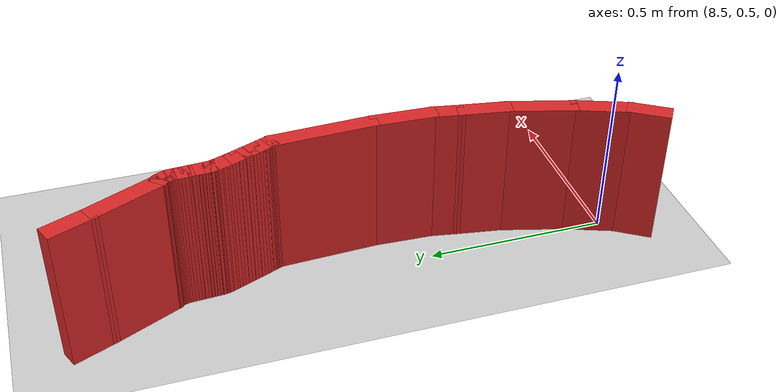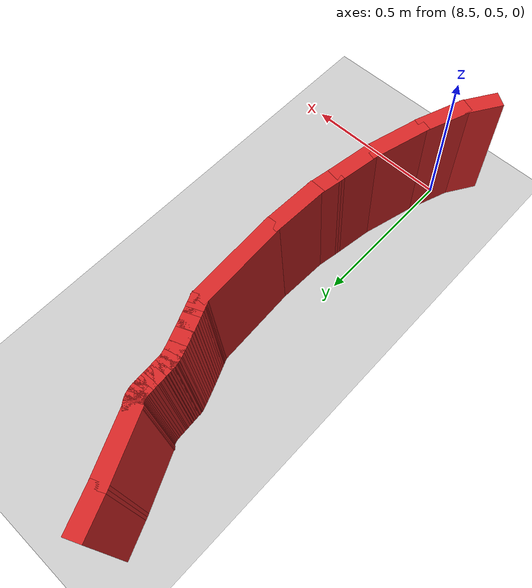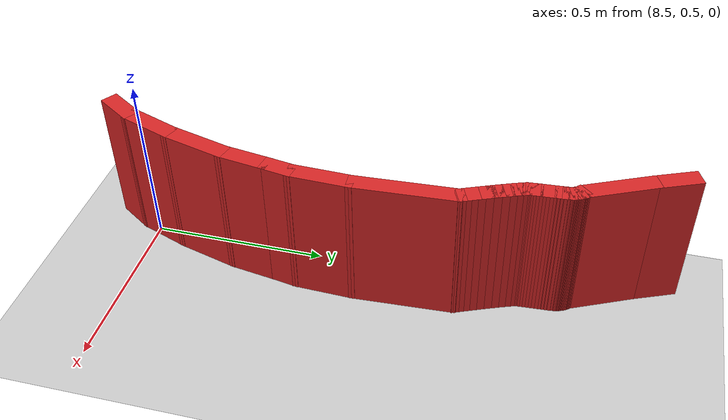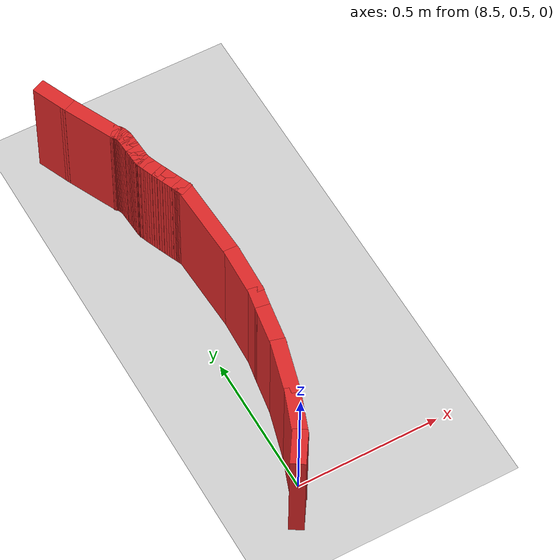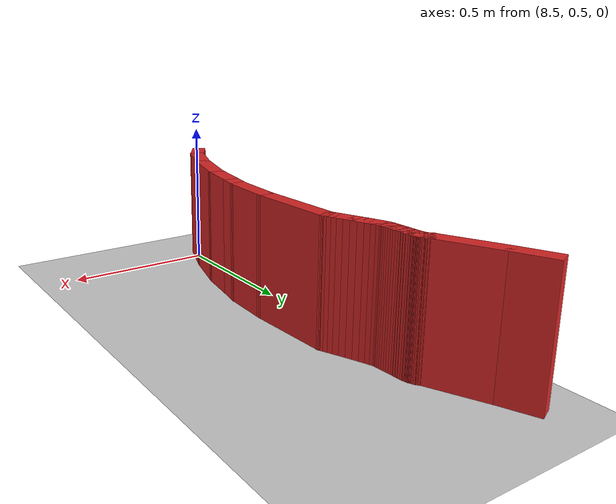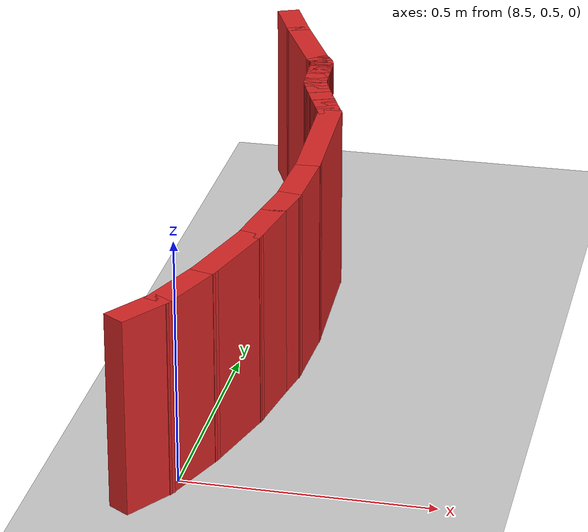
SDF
<sdf version="1.8">
 <world name="warehouse">
  <model name="ground_plane">
   <static>1</static>
   <link name="link">
    <collision name="collision">
     <geometry><plane><normal>0 0 1</normal><size>100 100</size></plane></geometry>
    </collision>
    <visual name="visual">
     <geometry><plane><normal>0 0 1</normal><size>100 100</size></plane></geometry>
     <material>
      <ambient>0.8 0.8 0.8 1</ambient>
      <diffuse>0.8 0.8 0.8 1</diffuse>
      <specular>0.8 0.8 0.8 1</specular>
     </material>
     <plugin name="__default__" filename="__default__"/>
    </visual>
   </link>
   <plugin name="__default__" filename="__default__"/>
  </model>
  <model name="outer_wall">
   <static>true</static>
   <link name="ow_9">
    <pose>8.410924 1.937092 0.2000 0 0 -1.167752</pose>
    <collision name="ow_9_collision"><geometry><box><size>0.131746 0.05 0.4</size></box></geometry></collision>
    <visual name="ow_9_visual">
     <geometry><box><size>0.131746 0.05 0.4</size></box></geometry>
     <material>
      <ambient>0.85 0.15 0.15 1</ambient>
      <diffuse>0.85 0.15 0.15 1</diffuse>
      <specular>0.1 0.1 0.1 1</specular>
     </material>
    </visual>
   </link>
   <link name="ow_10">
    <pose>8.473475 1.799167 0.2000 0 0 -1.131743</pose>
    <collision name="ow_10_collision"><geometry><box><size>0.211190 0.05 0.4</size></box></geometry></collision>
    <visual name="ow_10_visual">
     <geometry><box><size>0.211190 0.05 0.4</size></box></geometry>
     <material>
      <ambient>0.85 0.15 0.15 1</ambient>
      <diffuse>0.85 0.15 0.15 1</diffuse>
      <specular>0.1 0.1 0.1 1</specular>
     </material>
    </visual>
   </link>
   <link name="ow_11">
    <pose>8.514258 1.712508 0.2000 0 0 -0.726146</pose>
    <collision name="ow_11_collision"><geometry><box><size>0.020393 0.05 0.4</size></box></geometry></collision>
    <visual name="ow_11_visual">
     <geometry><box><size>0.020393 0.05 0.4</size></box></geometry>
     <material>
      <ambient>0.85 0.15 0.15 1</ambient>
      <diffuse>0.85 0.15 0.15 1</diffuse>
      <specular>0.1 0.1 0.1 1</specular>
     </material>
    </visual>
   </link>
   <link name="ow_12">
    <pose>8.514814 1.711983 0.2000 0 0 -0.766705</pose>
    <collision name="ow_12_collision"><geometry><box><size>0.021137 0.05 0.4</size></box></geometry></collision>
    <visual name="ow_12_visual">
     <geometry><box><size>0.021137 0.05 0.4</size></box></geometry>
     <material>
      <ambient>0.85 0.15 0.15 1</ambient>
      <diffuse>0.85 0.15 0.15 1</diffuse>
      <specular>0.1 0.1 0.1 1</specular>
     </material>
    </visual>
   </link>
   <link name="ow_13">
    <pose>8.515847 1.710927 0.2000 0 0 -0.814986</pose>
    <collision name="ow_13_collision"><geometry><box><size>0.021818 0.05 0.4</size></box></geometry></collision>
    <visual name="ow_13_visual">
     <geometry><box><size>0.021818 0.05 0.4</size></box></geometry>
     <material>
      <ambient>0.85 0.15 0.15 1</ambient>
      <diffuse>0.85 0.15 0.15 1</diffuse>
      <specular>0.1 0.1 0.1 1</specular>
     </material>
    </visual>
   </link>
   <link name="ow_14">
    <pose>8.517260 1.709333 0.2000 0 0 -0.868072</pose>
    <collision name="ow_14_collision"><geometry><box><size>0.022444 0.05 0.4</size></box></geometry></collision>
    <visual name="ow_14_visual">
     <geometry><box><size>0.022444 0.05 0.4</size></box></geometry>
     <material>
      <ambient>0.85 0.15 0.15 1</ambient>
      <diffuse>0.85 0.15 0.15 1</diffuse>
      <specular>0.1 0.1 0.1 1</specular>
     </material>
    </visual>
   </link>
   <link name="ow_15">
    <pose>8.518958 1.707194 0.2000 0 0 -0.925843</pose>
    <collision name="ow_15_collision"><geometry><box><size>0.023020 0.05 0.4</size></box></geometry></collision>
    <visual name="ow_15_visual">
     <geometry><box><size>0.023020 0.05 0.4</size></box></geometry>
     <material>
      <ambient>0.85 0.15 0.15 1</ambient>
      <diffuse>0.85 0.15 0.15 1</diffuse>
      <specular>0.1 0.1 0.1 1</specular>
     </material>
    </visual>
   </link>
   <link name="ow_16">
    <pose>8.520844 1.704502 0.2000 0 0 -0.988357</pose>
    <collision name="ow_16_collision"><geometry><box><size>0.023556 0.05 0.4</size></box></geometry></collision>
    <visual name="ow_16_visual">
     <geometry><box><size>0.023556 0.05 0.4</size></box></geometry>
     <material>
      <ambient>0.85 0.15 0.15 1</ambient>
      <diffuse>0.85 0.15 0.15 1</diffuse>
      <specular>0.1 0.1 0.1 1</specular>
     </material>
    </visual>
   </link>
   <link name="ow_17">
    <pose>8.522822 1.701251 0.2000 0 0 -1.055611</pose>
    <collision name="ow_17_collision"><geometry><box><size>0.024060 0.05 0.4</size></box></geometry></collision>
    <visual name="ow_17_visual">
     <geometry><box><size>0.024060 0.05 0.4</size></box></geometry>
     <material>
      <ambient>0.85 0.15 0.15 1</ambient>
      <diffuse>0.85 0.15 0.15 1</diffuse>
      <specular>0.1 0.1 0.1 1</specular>
     </material>
    </visual>
   </link>
   <link name="ow_18">
    <pose>8.524796 1.697433 0.2000 0 0 -1.127456</pose>
    <collision name="ow_18_collision"><geometry><box><size>0.024543 0.05 0.4</size></box></geometry></collision>
    <visual name="ow_18_visual">
     <geometry><box><size>0.024543 0.05 0.4</size></box></geometry>
     <material>
      <ambient>0.85 0.15 0.15 1</ambient>
      <diffuse>0.85 0.15 0.15 1</diffuse>
      <specular>0.1 0.1 0.1 1</specular>
     </material>
    </visual>
   </link>
   <link name="ow_19">
    <pose>8.526671 1.693040 0.2000 0 0 -1.203547</pose>
    <collision name="ow_19_collision"><geometry><box><size>0.025016 0.05 0.4</size></box></geometry></collision>
    <visual name="ow_19_visual">
     <geometry><box><size>0.025016 0.05 0.4</size></box></geometry>
     <material>
      <ambient>0.85 0.15 0.15 1</ambient>
      <diffuse>0.85 0.15 0.15 1</diffuse>
      <specular>0.1 0.1 0.1 1</specular>
     </material>
    </visual>
   </link>
   <link name="ow_20">
    <pose>8.528350 1.688067 0.2000 0 0 -1.283308</pose>
    <collision name="ow_20_collision"><geometry><box><size>0.025491 0.05 0.4</size></box></geometry></collision>
    <visual name="ow_20_visual">
     <geometry><box><size>0.025491 0.05 0.4</size></box></geometry>
     <material>
      <ambient>0.85 0.15 0.15 1</ambient>
      <diffuse>0.85 0.15 0.15 1</diffuse>
      <specular>0.1 0.1 0.1 1</specular>
     </material>
    </visual>
   </link>
   <link name="ow_21">
    <pose>8.529737 1.682505 0.2000 0 0 -1.365927</pose>
    <collision name="ow_21_collision"><geometry><box><size>0.025983 0.05 0.4</size></box></geometry></collision>
    <visual name="ow_21_visual">
     <geometry><box><size>0.025983 0.05 0.4</size></box></geometry>
     <material>
      <ambient>0.85 0.15 0.15 1</ambient>
      <diffuse>0.85 0.15 0.15 1</diffuse>
      <specular>0.1 0.1 0.1 1</specular>
     </material>
    </visual>
   </link>
   <link name="ow_22">
    <pose>8.530736 1.676348 0.2000 0 0 -1.450381</pose>
    <collision name="ow_22_collision"><geometry><box><size>0.026504 0.05 0.4</size></box></geometry></collision>
    <visual name="ow_22_visual">
     <geometry><box><size>0.026504 0.05 0.4</size></box></geometry>
     <material>
      <ambient>0.85 0.15 0.15 1</ambient>
      <diffuse>0.85 0.15 0.15 1</diffuse>
      <specular>0.1 0.1 0.1 1</specular>
     </material>
    </visual>
   </link>
   <link name="ow_23">
    <pose>8.531392 1.669507 0.2000 0 0 -1.497422</pose>
    <collision name="ow_23_collision"><geometry><box><size>0.027244 0.05 0.4</size></box></geometry></collision>
    <visual name="ow_23_visual">
     <geometry><box><size>0.027244 0.05 0.4</size></box></geometry>
     <material>
      <ambient>0.85 0.15 0.15 1</ambient>
      <diffuse>0.85 0.15 0.15 1</diffuse>
      <specular>0.1 0.1 0.1 1</specular>
     </material>
    </visual>
   </link>
   <link name="ow_24">
    <pose>8.531924 1.661882 0.2000 0 0 -1.504713</pose>
    <collision name="ow_24_collision"><geometry><box><size>0.028042 0.05 0.4</size></box></geometry></collision>
    <visual name="ow_24_visual">
     <geometry><box><size>0.028042 0.05 0.4</size></box></geometry>
     <material>
      <ambient>0.85 0.15 0.15 1</ambient>
      <diffuse>0.85 0.15 0.15 1</diffuse>
      <specular>0.1 0.1 0.1 1</specular>
     </material>
    </visual>
   </link>
   <link name="ow_25">
    <pose>8.532455 1.653556 0.2000 0 0 -1.509314</pose>
    <collision name="ow_25_collision"><geometry><box><size>0.028644 0.05 0.4</size></box></geometry></collision>
    <visual name="ow_25_visual">
     <geometry><box><size>0.028644 0.05 0.4</size></box></geometry>
     <material>
      <ambient>0.85 0.15 0.15 1</ambient>
      <diffuse>0.85 0.15 0.15 1</diffuse>
      <specular>0.1 0.1 0.1 1</specular>
     </material>
    </visual>
   </link>
   <link name="ow_26">
    <pose>8.532986 1.644726 0.2000 0 0 -1.512062</pose>
    <collision name="ow_26_collision"><geometry><box><size>0.029048 0.05 0.4</size></box></geometry></collision>
    <visual name="ow_26_visual">
     <geometry><box><size>0.029048 0.05 0.4</size></box></geometry>
     <material>
      <ambient>0.85 0.15 0.15 1</ambient>
      <diffuse>0.85 0.15 0.15 1</diffuse>
      <specular>0.1 0.1 0.1 1</specular>
     </material>
    </visual>
   </link>
   <link name="ow_27">
    <pose>8.533517 1.635590 0.2000 0 0 -1.513374</pose>
    <collision name="ow_27_collision"><geometry><box><size>0.029255 0.05 0.4</size></box></geometry></collision>
    <visual name="ow_27_visual">
     <geometry><box><size>0.029255 0.05 0.4</size></box></geometry>
     <material>
      <ambient>0.85 0.15 0.15 1</ambient>
      <diffuse>0.85 0.15 0.15 1</diffuse>
      <specular>0.1 0.1 0.1 1</specular>
     </material>
    </visual>
   </link>
   <link name="ow_28">
    <pose>8.534048 1.626346 0.2000 0 0 -1.513431</pose>
    <collision name="ow_28_collision"><geometry><box><size>0.029264 0.05 0.4</size></box></geometry></collision>
    <visual name="ow_28_visual">
     <geometry><box><size>0.029264 0.05 0.4</size></box></geometry>
     <material>
      <ambient>0.85 0.15 0.15 1</ambient>
      <diffuse>0.85 0.15 0.15 1</diffuse>
      <specular>0.1 0.1 0.1 1</specular>
     </material>
    </visual>
   </link>
   <link name="ow_29">
    <pose>8.534579 1.617190 0.2000 0 0 -1.512241</pose>
    <collision name="ow_29_collision"><geometry><box><size>0.029077 0.05 0.4</size></box></geometry></collision>
    <visual name="ow_29_visual">
     <geometry><box><size>0.029077 0.05 0.4</size></box></geometry>
     <material>
      <ambient>0.85 0.15 0.15 1</ambient>
      <diffuse>0.85 0.15 0.15 1</diffuse>
      <specular>0.1 0.1 0.1 1</specular>
     </material>
    </visual>
   </link>
   <link name="ow_30">
    <pose>8.535110 1.608322 0.2000 0 0 -1.509641</pose>
    <collision name="ow_30_collision"><geometry><box><size>0.028692 0.05 0.4</size></box></geometry></collision>
    <visual name="ow_30_visual">
     <geometry><box><size>0.028692 0.05 0.4</size></box></geometry>
     <material>
      <ambient>0.85 0.15 0.15 1</ambient>
      <diffuse>0.85 0.15 0.15 1</diffuse>
      <specular>0.1 0.1 0.1 1</specular>
     </material>
    </visual>
   </link>
   <link name="ow_31">
    <pose>8.535642 1.599937 0.2000 0 0 -1.505243</pose>
    <collision name="ow_31_collision"><geometry><box><size>0.028111 0.05 0.4</size></box></geometry></collision>
    <visual name="ow_31_visual">
     <geometry><box><size>0.028111 0.05 0.4</size></box></geometry>
     <material>
      <ambient>0.85 0.15 0.15 1</ambient>
      <diffuse>0.85 0.15 0.15 1</diffuse>
      <specular>0.1 0.1 0.1 1</specular>
     </material>
    </visual>
   </link>
   <link name="ow_32">
    <pose>8.536173 1.592234 0.2000 0 0 -1.498263</pose>
    <collision name="ow_32_collision"><geometry><box><size>0.027332 0.05 0.4</size></box></geometry></collision>
    <visual name="ow_32_visual">
     <geometry><box><size>0.027332 0.05 0.4</size></box></geometry>
     <material>
      <ambient>0.85 0.15 0.15 1</ambient>
      <diffuse>0.85 0.15 0.15 1</diffuse>
      <specular>0.1 0.1 0.1 1</specular>
     </material>
    </visual>
   </link>
   <link name="ow_33">
    <pose>8.536704 1.585410 0.2000 0 0 -1.487103</pose>
    <collision name="ow_33_collision"><geometry><box><size>0.026357 0.05 0.4</size></box></geometry></collision>
    <visual name="ow_33_visual">
     <geometry><box><size>0.026357 0.05 0.4</size></box></geometry>
     <material>
      <ambient>0.85 0.15 0.15 1</ambient>
      <diffuse>0.85 0.15 0.15 1</diffuse>
      <specular>0.1 0.1 0.1 1</specular>
     </material>
    </visual>
   </link>
   <link name="ow_34">
    <pose>8.537236 1.579663 0.2000 0 0 -1.468142</pose>
    <collision name="ow_34_collision"><geometry><box><size>0.025186 0.05 0.4</size></box></geometry></collision>
    <visual name="ow_34_visual">
     <geometry><box><size>0.025186 0.05 0.4</size></box></geometry>
     <material>
      <ambient>0.85 0.15 0.15 1</ambient>
      <diffuse>0.85 0.15 0.15 1</diffuse>
      <specular>0.1 0.1 0.1 1</specular>
     </material>
    </visual>
   </link>
   <link name="ow_35">
    <pose>8.538376 1.573562 0.2000 0 0 -1.327310</pose>
    <collision name="ow_35_collision"><geometry><box><size>0.027257 0.05 0.4</size></box></geometry></collision>
    <visual name="ow_35_visual">
     <geometry><box><size>0.027257 0.05 0.4</size></box></geometry>
     <material>
      <ambient>0.85 0.15 0.15 1</ambient>
      <diffuse>0.85 0.15 0.15 1</diffuse>
      <specular>0.1 0.1 0.1 1</specular>
     </material>
    </visual>
   </link>
   <link name="ow_36">
    <pose>8.541198 1.564303 0.2000 0 0 -1.243636</pose>
    <collision name="ow_36_collision"><geometry><box><size>0.032119 0.05 0.4</size></box></geometry></collision>
    <visual name="ow_36_visual">
     <geometry><box><size>0.032119 0.05 0.4</size></box></geometry>
     <material>
      <ambient>0.85 0.15 0.15 1</ambient>
      <diffuse>0.85 0.15 0.15 1</diffuse>
      <specular>0.1 0.1 0.1 1</specular>
     </material>
    </visual>
   </link>
   <link name="ow_37">
    <pose>8.545947 1.551090 0.2000 0 0 -1.212249</pose>
    <collision name="ow_37_collision"><geometry><box><size>0.035964 0.05 0.4</size></box></geometry></collision>
    <visual name="ow_37_visual">
     <geometry><box><size>0.035964 0.05 0.4</size></box></geometry>
     <material>
      <ambient>0.85 0.15 0.15 1</ambient>
      <diffuse>0.85 0.15 0.15 1</diffuse>
      <specular>0.1 0.1 0.1 1</specular>
     </material>
    </visual>
   </link>
   <link name="ow_38">
    <pose>8.552183 1.534887 0.2000 0 0 -1.195842</pose>
    <collision name="ow_38_collision"><geometry><box><size>0.038762 0.05 0.4</size></box></geometry></collision>
    <visual name="ow_38_visual">
     <geometry><box><size>0.038762 0.05 0.4</size></box></geometry>
     <material>
      <ambient>0.85 0.15 0.15 1</ambient>
      <diffuse>0.85 0.15 0.15 1</diffuse>
      <specular>0.1 0.1 0.1 1</specular>
     </material>
    </visual>
   </link>
   <link name="ow_39">
    <pose>8.559470 1.516654 0.2000 0 0 -1.185762</pose>
    <collision name="ow_39_collision"><geometry><box><size>0.040508 0.05 0.4</size></box></geometry></collision>
    <visual name="ow_39_visual">
     <geometry><box><size>0.040508 0.05 0.4</size></box></geometry>
     <material>
      <ambient>0.85 0.15 0.15 1</ambient>
      <diffuse>0.85 0.15 0.15 1</diffuse>
      <specular>0.1 0.1 0.1 1</specular>
     </material>
    </visual>
   </link>
   <link name="ow_40">
    <pose>8.567370 1.497354 0.2000 0 0 -1.178943</pose>
    <collision name="ow_40_collision"><geometry><box><size>0.041200 0.05 0.4</size></box></geometry></collision>
    <visual name="ow_40_visual">
     <geometry><box><size>0.041200 0.05 0.4</size></box></geometry>
     <material>
      <ambient>0.85 0.15 0.15 1</ambient>
      <diffuse>0.85 0.15 0.15 1</diffuse>
      <specular>0.1 0.1 0.1 1</specular>
     </material>
    </visual>
   </link>
   <link name="ow_41">
    <pose>8.575444 1.477949 0.2000 0 0 -1.174025</pose>
    <collision name="ow_41_collision"><geometry><box><size>0.040836 0.05 0.4</size></box></geometry></collision>
    <visual name="ow_41_visual">
     <geometry><box><size>0.040836 0.05 0.4</size></box></geometry>
     <material>
      <ambient>0.85 0.15 0.15 1</ambient>
      <diffuse>0.85 0.15 0.15 1</diffuse>
      <specular>0.1 0.1 0.1 1</specular>
     </material>
    </visual>
   </link>
   <link name="ow_42">
    <pose>8.583255 1.459400 0.2000 0 0 -1.170311</pose>
    <collision name="ow_42_collision"><geometry><box><size>0.039417 0.05 0.4</size></box></geometry></collision>
    <visual name="ow_42_visual">
     <geometry><box><size>0.039417 0.05 0.4</size></box></geometry>
     <material>
      <ambient>0.85 0.15 0.15 1</ambient>
      <diffuse>0.85 0.15 0.15 1</diffuse>
      <specular>0.1 0.1 0.1 1</specular>
     </material>
    </visual>
   </link>
   <link name="ow_43">
    <pose>8.590365 1.442669 0.2000 0 0 -1.167409</pose>
    <collision name="ow_43_collision"><geometry><box><size>0.036941 0.05 0.4</size></box></geometry></collision>
    <visual name="ow_43_visual">
     <geometry><box><size>0.036941 0.05 0.4</size></box></geometry>
     <material>
      <ambient>0.85 0.15 0.15 1</ambient>
      <diffuse>0.85 0.15 0.15 1</diffuse>
      <specular>0.1 0.1 0.1 1</specular>
     </material>
    </visual>
   </link>
   <link name="ow_44">
    <pose>8.596336 1.428719 0.2000 0 0 -1.165085</pose>
    <collision name="ow_44_collision"><geometry><box><size>0.033409 0.05 0.4</size></box></geometry></collision>
    <visual name="ow_44_visual">
     <geometry><box><size>0.033409 0.05 0.4</size></box></geometry>
     <material>
      <ambient>0.85 0.15 0.15 1</ambient>
      <diffuse>0.85 0.15 0.15 1</diffuse>
      <specular>0.1 0.1 0.1 1</specular>
     </material>
    </visual>
   </link>
   <link name="ow_45">
    <pose>8.600730 1.418510 0.2000 0 0 -1.163196</pose>
    <collision name="ow_45_collision"><geometry><box><size>0.028820 0.05 0.4</size></box></geometry></collision>
    <visual name="ow_45_visual">
     <geometry><box><size>0.028820 0.05 0.4</size></box></geometry>
     <material>
      <ambient>0.85 0.15 0.15 1</ambient>
      <diffuse>0.85 0.15 0.15 1</diffuse>
      <specular>0.1 0.1 0.1 1</specular>
     </material>
    </visual>
   </link>
   <link name="ow_46">
    <pose>8.603109 1.413005 0.2000 0 0 -1.161746</pose>
    <collision name="ow_46_collision"><geometry><box><size>0.023175 0.05 0.4</size></box></geometry></collision>
    <visual name="ow_46_visual">
     <geometry><box><size>0.023175 0.05 0.4</size></box></geometry>
     <material>
      <ambient>0.85 0.15 0.15 1</ambient>
      <diffuse>0.85 0.15 0.15 1</diffuse>
      <specular>0.1 0.1 0.1 1</specular>
     </material>
    </visual>
   </link>
   <link name="ow_47">
    <pose>8.610303 1.272179 0.2000 0 0 -1.523743</pose>
    <collision name="ow_47_collision"><geometry><box><size>0.299048 0.05 0.4</size></box></geometry></collision>
    <visual name="ow_47_visual">
     <geometry><box><size>0.299048 0.05 0.4</size></box></geometry>
     <material>
      <ambient>0.85 0.15 0.15 1</ambient>
      <diffuse>0.85 0.15 0.15 1</diffuse>
      <specular>0.1 0.1 0.1 1</specular>
     </material>
    </visual>
   </link>
   <link name="ow_48">
    <pose>8.613793 1.051434 0.2000 0 0 -1.608541</pose>
    <collision name="ow_48_collision"><geometry><box><size>0.182866 0.05 0.4</size></box></geometry></collision>
    <visual name="ow_48_visual">
     <geometry><box><size>0.182866 0.05 0.4</size></box></geometry>
     <material>
      <ambient>0.85 0.15 0.15 1</ambient>
      <diffuse>0.85 0.15 0.15 1</diffuse>
      <specular>0.1 0.1 0.1 1</specular>
     </material>
    </visual>
   </link>
   <link name="ow_49">
    <pose>8.604440 0.934363 0.2000 0 0 -1.744938</pose>
    <collision name="ow_49_collision"><geometry><box><size>0.092488 0.05 0.4</size></box></geometry></collision>
    <visual name="ow_49_visual">
     <geometry><box><size>0.092488 0.05 0.4</size></box></geometry>
     <material>
      <ambient>0.85 0.15 0.15 1</ambient>
      <diffuse>0.85 0.15 0.15 1</diffuse>
      <specular>0.1 0.1 0.1 1</specular>
     </material>
    </visual>
   </link>
   <link name="ow_50">
    <pose>8.587956 0.835043 0.2000 0 0 -1.729836</pose>
    <collision name="ow_50_collision"><geometry><box><size>0.148873 0.05 0.4</size></box></geometry></collision>
    <visual name="ow_50_visual">
     <geometry><box><size>0.148873 0.05 0.4</size></box></geometry>
     <material>
      <ambient>0.85 0.15 0.15 1</ambient>
      <diffuse>0.85 0.15 0.15 1</diffuse>
      <specular>0.1 0.1 0.1 1</specular>
     </material>
    </visual>
   </link>
   <link name="ow_51">
    <pose>8.554089 0.686080 0.2000 0 0 -1.841268</pose>
    <collision name="ow_51_collision"><geometry><box><size>0.197119 0.05 0.4</size></box></geometry></collision>
    <visual name="ow_51_visual">
     <geometry><box><size>0.197119 0.05 0.4</size></box></geometry>
     <material>
      <ambient>0.85 0.15 0.15 1</ambient>
      <diffuse>0.85 0.15 0.15 1</diffuse>
      <specular>0.1 0.1 0.1 1</specular>
     </material>
    </visual>
   </link>
   <link name="ow_52">
    <pose>8.504578 0.531661 0.2000 0 0 -1.928867</pose>
    <collision name="ow_52_collision"><geometry><box><size>0.167514 0.05 0.4</size></box></geometry></collision>
    <visual name="ow_52_visual">
     <geometry><box><size>0.167514 0.05 0.4</size></box></geometry>
     <material>
      <ambient>0.85 0.15 0.15 1</ambient>
      <diffuse>0.85 0.15 0.15 1</diffuse>
      <specular>0.1 0.1 0.1 1</specular>
     </material>
    </visual>
   </link>
   <link name="ow_53">
    <pose>8.451132 0.420265 0.2000 0 0 -2.148658</pose>
    <collision name="ow_53_collision"><geometry><box><size>0.121040 0.05 0.4</size></box></geometry></collision>
    <visual name="ow_53_visual">
     <geometry><box><size>0.121040 0.05 0.4</size></box></geometry>
     <material>
      <ambient>0.85 0.15 0.15 1</ambient>
      <diffuse>0.85 0.15 0.15 1</diffuse>
      <specular>0.1 0.1 0.1 1</specular>
     </material>
    </visual>
   </link>
  </model>
 </world>
</sdf>
